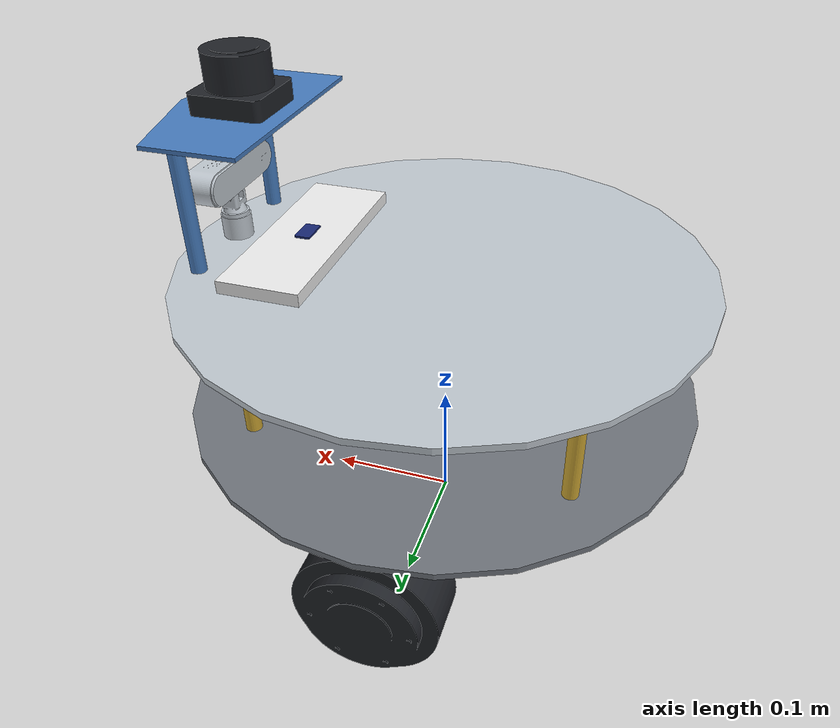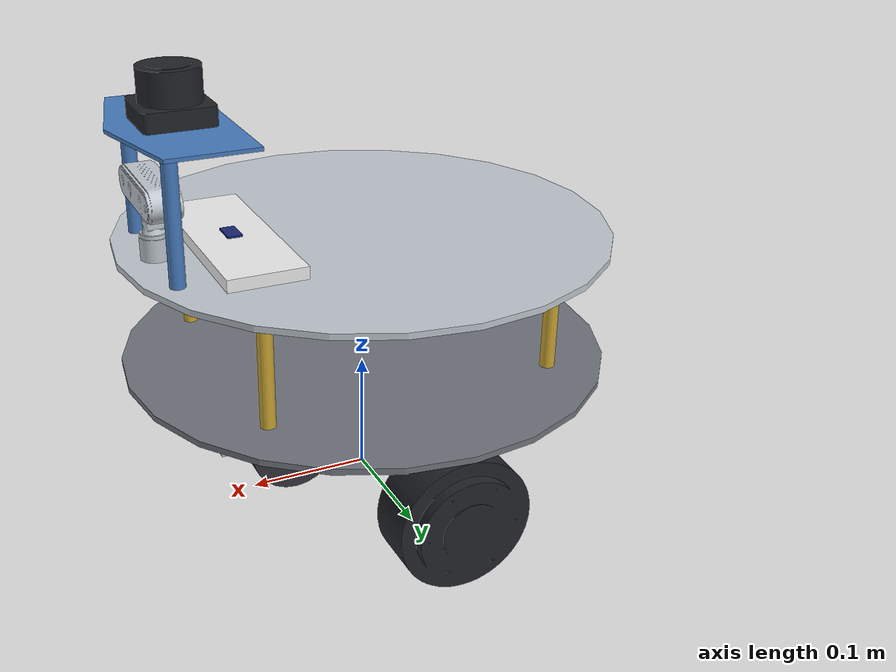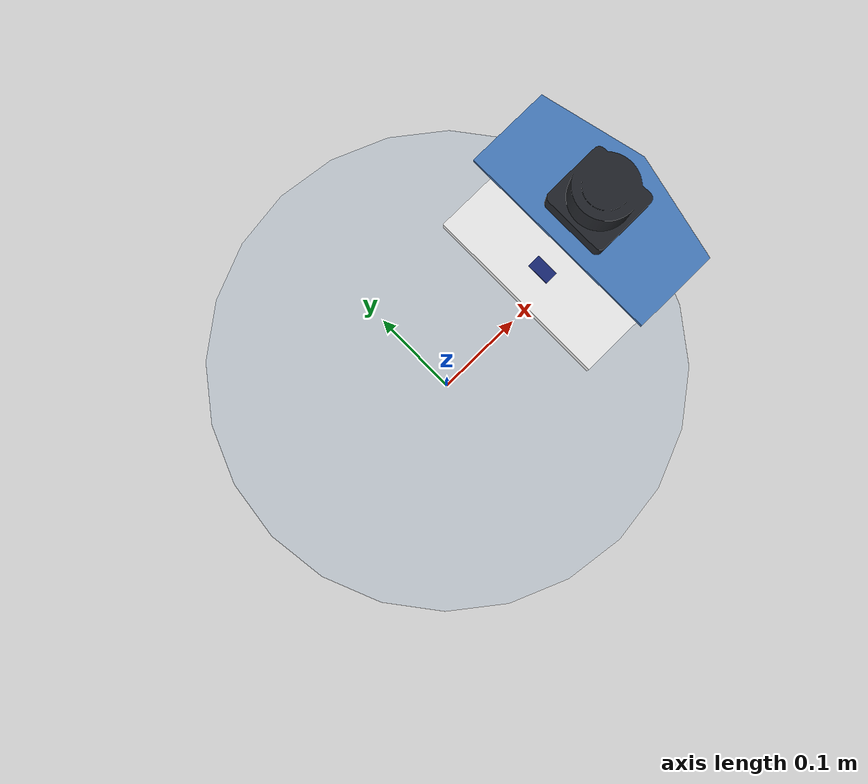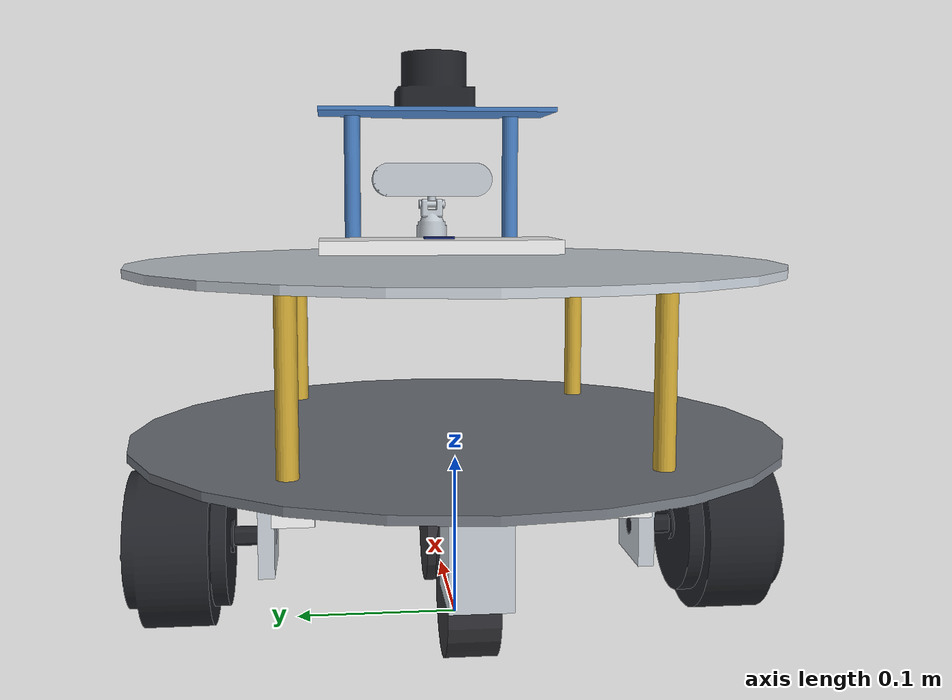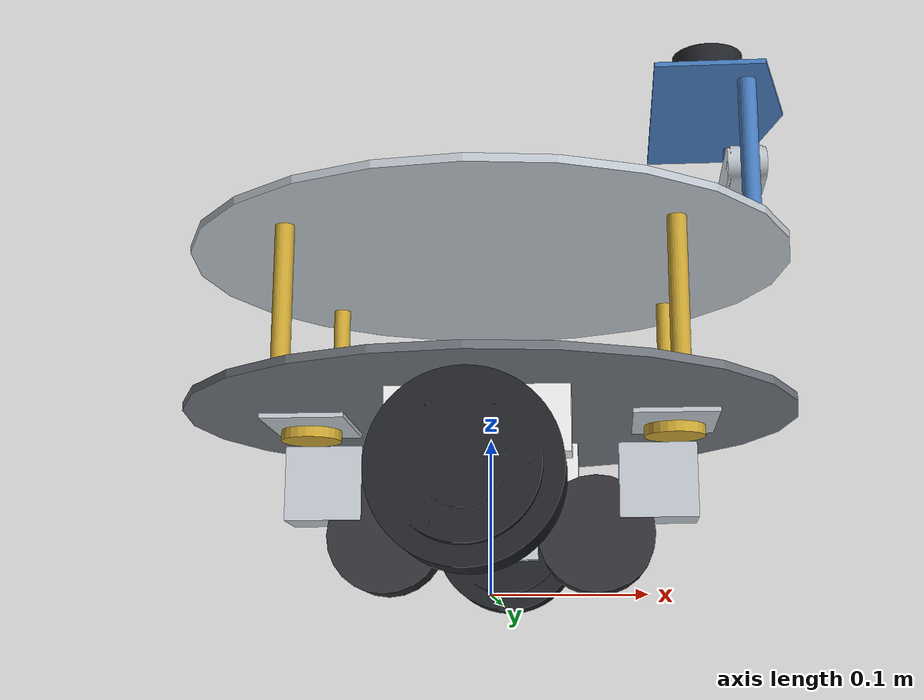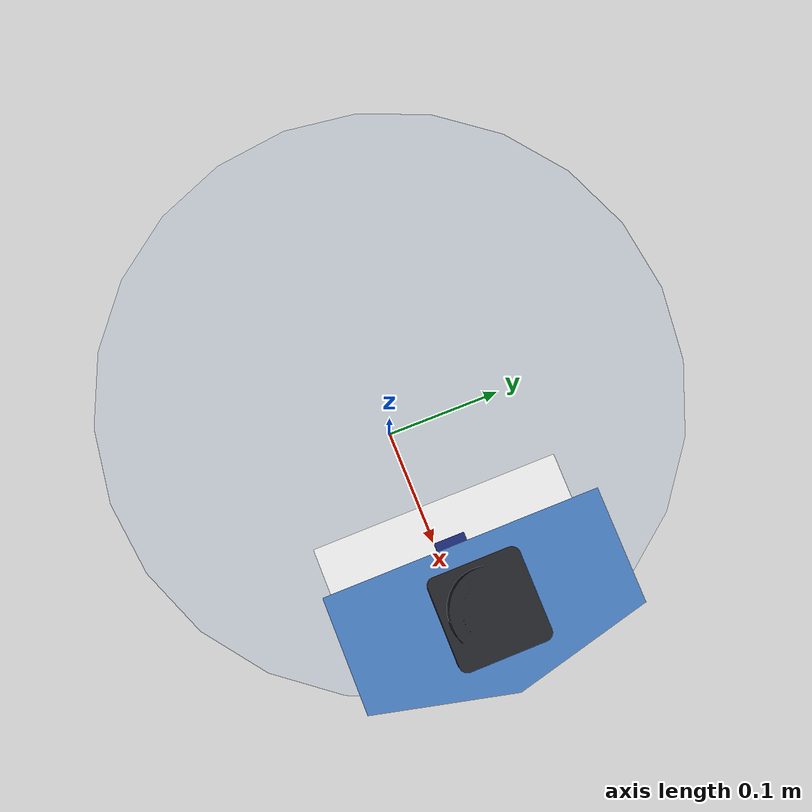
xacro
<?xml version="1.0"?>
<robot name="ace492" xmlns:xacro="http://www.ros.org/wiki/xacro">

  <!-- ===== Hình học (từ robot.urdf) ===== -->
  <xacro:property name="base_height" value="0.1135"/>    <!-- base_footprint -> base_link -->
  <xacro:property name="wheel_radius" value="0.0535"/>
  <xacro:property name="wheel_width" value="0.0415"/>
  <xacro:property name="wheel_y" value="0.17"/>           <!-- track 0.34 -->
  <xacro:property name="wheel_z" value="-0.06"/>
  <xacro:property name="caster_x" value="0.068"/>
  <xacro:property name="caster_z" value="-0.076"/>
  <xacro:property name="caster_radius" value="0.0375"/>
  <xacro:property name="mesh" value="package://robot_description/meshes"/>

  <!-- ===== Khối lượng: xe + laptop cân được 12 kg (người dùng, 2026-11-03) = thân 11 + 2 bánh × 0.5.
       Chia thân/bánh và trọng tâm vẫn là giả định. ===== -->
  <xacro:property name="base_mass" value="11.0"/>
  <xacro:property name="wheel_mass" value="0.5"/>
  <!-- Mô-men tối đa mỗi bánh (giới hạn lực của joint khi bám vận tốc). TBD theo datasheet motor -->
  <xacro:property name="wheel_effort" value="20.0"/>

  <xacro:property name="colors" value="${dict(
      chassis_gray='0.44 0.46 0.49 1', silver='0.76 0.79 0.82 1', gold='0.80 0.65 0.20 1',
      white='0.94 0.94 0.94 1', steel_blue='0.28 0.49 0.75 1', dark_black='0.13 0.14 0.16 1',
      rubber='0.20 0.20 0.22 1', imu_blue='0.10 0.16 0.46 1')}"/>
  <xacro:macro name="color" params="name">
    <material name="${name}"><color rgba="${colors[name]}"/></material>
  </xacro:macro>

  <!-- Trụ Ø12 (trụ nối 2 tầng, trụ đỡ tấm LiDAR) -->
  <xacro:macro name="standoff" params="x y z material">
    <visual>
      <origin xyz="${x} ${y} ${z}" rpy="0 0 0"/>
      <geometry><cylinder radius="0.006" length="0.1"/></geometry>
      <xacro:color name="${material}"/>
    </visual>
  </xacro:macro>

  <!-- Motor + tấm gá một bên (s = +1 trái, -1 phải) -->
  <xacro:macro name="motor_side" params="s">
    <visual>
      <origin xyz="0 ${s * 0.1} -0.02" rpy="0 0 0"/>
      <geometry><box size="0.11 0.025 0.04"/></geometry>
      <xacro:color name="white"/>
    </visual>
    <visual>
      <origin xyz="0 ${s * 0.1175} -0.04" rpy="0 0 0"/>
      <geometry><mesh filename="${mesh}/motor_plate.stl" scale="0.001 0.001 0.001"/></geometry>
      <xacro:color name="silver"/>
    </visual>
  </xacro:macro>

  <!-- Caster: tấm gá, khớp xoay, càng, bánh Ø75 (s = +1 trước, -1 sau). Collision là cầu (ma sát ~0). -->
  <xacro:macro name="caster" params="s">
    <visual>
      <origin xyz="${s * 0.12} 0 -0.0015" rpy="0 0 0"/>
      <geometry><box size="0.055 0.075 0.003"/></geometry>
      <xacro:color name="silver"/>
    </visual>
    <visual>
      <origin xyz="${s * 0.12} 0 -0.0085" rpy="0 0 0"/>
      <geometry><cylinder radius="0.02" length="0.007"/></geometry>
      <xacro:color name="gold"/>
    </visual>
    <visual>
      <origin xyz="${s * 0.108} 0 -0.0425" rpy="0 0 0"/>
      <geometry><box size="0.05 0.035 0.048"/></geometry>
      <xacro:color name="silver"/>
    </visual>
    <visual>
      <origin xyz="${s * caster_x} 0 ${caster_z}" rpy="${pi / 2} 0 0"/>
      <geometry><cylinder radius="${caster_radius}" length="0.03"/></geometry>
      <xacro:color name="rubber"/>
    </visual>
    <collision>
      <origin xyz="${s * caster_x} 0 ${caster_z}" rpy="0 0 0"/>
      <geometry><sphere radius="${caster_radius}"/></geometry>
    </collision>
  </xacro:macro>

  <!-- ===== base_footprint ===== -->
  <link name="base_footprint"/>

  <joint name="base_footprint_joint" type="fixed">
    <origin xyz="0 0 ${base_height}" rpy="0 0 0"/>
    <parent link="base_footprint"/>
    <child link="base_link"/>
  </joint>

  <!-- ===== base_link: thân + motor + caster (một link, không thêm frame so với robot.urdf) ===== -->
  <link name="base_link">
    <inertial>
      <!-- TBD: trọng tâm giả định ở tâm, cao 0.05 m trên base_link. Quán tính: trụ đặc r 0.2, cao ~0.245
           (cùng hình dạng như bản 8 kg cũ, nhân theo khối lượng). -->
      <origin xyz="0 0 0.05" rpy="0 0 0"/>
      <mass value="${base_mass}"/>
      <inertia ixx="${base_mass * (3 * 0.2**2 + 0.245**2) / 12}" ixy="0" ixz="0"
               iyy="${base_mass * (3 * 0.2**2 + 0.245**2) / 12}" iyz="0"
               izz="${base_mass * 0.2**2 / 2}"/>
    </inertial>

    <!-- [Tầng dưới] Đế tròn Ø400 dày 5 mm: z 0 → 0.005 -->
    <visual>
      <origin xyz="0 0 0.0025" rpy="0 0 0"/>
      <geometry><cylinder radius="0.2" length="0.005"/></geometry>
      <xacro:color name="chassis_gray"/>
    </visual>
    <collision>
      <origin xyz="0 0 0.0025" rpy="0 0 0"/>
      <geometry><cylinder radius="0.2" length="0.005"/></geometry>
    </collision>

    <!-- [Trụ nối 2 tầng] 4 trụ Ø12 cao 100 mm tại (±0.12, ±0.10) -->
    <xacro:standoff x="-0.12" y="-0.1" z="0.055" material="gold"/>
    <xacro:standoff x="-0.12" y="0.1" z="0.055" material="gold"/>
    <xacro:standoff x="0.12" y="-0.1" z="0.055" material="gold"/>
    <xacro:standoff x="0.12" y="0.1" z="0.055" material="gold"/>
    <!-- Va chạm khoang giữa 2 tầng: gộp thành trụ Ø400 (vật cản chạm mép đế trước) -->
    <collision>
      <origin xyz="0 0 0.055" rpy="0 0 0"/>
      <geometry><cylinder radius="0.2" length="0.1"/></geometry>
    </collision>

    <!-- [Tầng trên] Đế tròn Ø400 dày 5 mm: z 0.105 → 0.110 -->
    <visual>
      <origin xyz="0 0 0.1075" rpy="0 0 0"/>
      <geometry><cylinder radius="0.2" length="0.005"/></geometry>
      <xacro:color name="silver"/>
    </visual>
    <collision>
      <origin xyz="0 0 0.1075" rpy="0 0 0"/>
      <geometry><cylinder radius="0.2" length="0.005"/></geometry>
    </collision>

    <!-- [Breadboard] 170×63×10 mm, xoay 90°, tâm (0.11, 0, 0.115). IMU gắn trên mặt này -->
    <visual>
      <origin xyz="0.11 0 0.115" rpy="0 0 ${pi / 2}"/>
      <geometry><box size="0.17 0.063 0.01"/></geometry>
      <xacro:color name="white"/>
    </visual>

    <!-- [Giá camera] đáy tại mặt tầng trên (0.17, 0, 0.11), cao 40 mm -->
    <visual>
      <origin xyz="0.17 0 0.11" rpy="0 0 0"/>
      <geometry><mesh filename="${mesh}/camera_mount_photo.stl" scale="0.001 0.001 0.001"/></geometry>
      <xacro:color name="silver"/>
    </visual>

    <!-- [Tấm LiDAR] 90×170×3 mm, tâm dày z 0.2115 + 2 trụ đỡ tại (0.17, ±0.06) -->
    <visual>
      <origin xyz="0 0 0.2115" rpy="0 0 0"/>
      <geometry><mesh filename="${mesh}/lidar_plate.stl" scale="0.001 0.001 0.001"/></geometry>
      <xacro:color name="steel_blue"/>
    </visual>
    <xacro:standoff x="0.17" y="-0.06" z="0.16" material="steel_blue"/>
    <xacro:standoff x="0.17" y="0.06" z="0.16" material="steel_blue"/>

    <!-- Motor + tấm gá hai bên (bánh nằm ở link riêng) -->
    <xacro:motor_side s="1"/>
    <xacro:motor_side s="-1"/>

    <!-- Caster trước / sau -->
    <xacro:caster s="1"/>
    <xacro:caster s="-1"/>
  </link>

  <xacro:macro name="drive_wheel" params="side y axis_y mesh_yaw">
    <link name="${side}_wheel">
      <inertial>
        <origin xyz="0 0 0" rpy="0 0 0"/>
        <mass value="${wheel_mass}"/>
        <!-- trụ đặc: trục Y = m r^2 / 2, X/Z = m (3 r^2 + h^2) / 12 -->
        <inertia ixx="${wheel_mass * (3 * wheel_radius**2 + wheel_width**2) / 12}" ixy="0" ixz="0"
                 iyy="${wheel_mass * wheel_radius**2 / 2}" iyz="0"
                 izz="${wheel_mass * (3 * wheel_radius**2 + wheel_width**2) / 12}"/>
      </inertial>
      <visual>
        <origin xyz="0 0 0" rpy="0 0 ${mesh_yaw}"/>
        <geometry><mesh filename="${mesh}/drive_wheel.stl" scale="0.001 0.001 0.001"/></geometry>
        <xacro:color name="dark_black"/>
      </visual>
      <collision>
        <origin xyz="0 0 0" rpy="0 0 0"/>
        <geometry><sphere radius="${wheel_radius}"/></geometry>
      </collision>
    </link>

    <joint name="${side}_wheel_joint" type="continuous">
      <origin xyz="0 ${y} ${wheel_z}" rpy="0 0 0"/>
      <parent link="base_link"/>
      <child link="${side}_wheel"/>
      <axis xyz="0 ${axis_y} 0"/>
      <limit effort="${wheel_effort}" velocity="100.0"/>
    </joint>
  </xacro:macro>

  <xacro:drive_wheel side="left" y="${wheel_y}" axis_y="1" mesh_yaw="${pi}"/>
  <xacro:drive_wheel side="right" y="${-wheel_y}" axis_y="-1" mesh_yaw="0"/>

  <!-- ===== Frame cảm biến (y hệt robot.urdf; cảm biến Gazebo ở sim_sensors.xacro) ===== -->
  <link name="imu_link">
    <visual>
      <origin xyz="0 0 0" rpy="0 0 ${pi / 2}"/>
      <geometry><box size="0.021 0.012 0.0016"/></geometry>
      <xacro:color name="imu_blue"/>
    </visual>
  </link>
  <joint name="imu_joint" type="fixed">
    <origin xyz="0.11 0 0.1208" rpy="0 0 0"/>
    <parent link="base_link"/>
    <child link="imu_link"/>
  </joint>

  <link name="camera_link">
    <visual>
      <origin xyz="0 0 0" rpy="0 0 0"/>
      <geometry><mesh filename="${mesh}/camera_d435.stl" scale="0.001 0.001 0.001"/></geometry>
      <xacro:color name="silver"/>
    </visual>
    <collision>
      <origin xyz="0 0 0" rpy="0 0 0"/>
      <geometry><box size="0.025 0.09 0.025"/></geometry>
    </collision>
  </link>
  <joint name="camera_joint" type="fixed">
    <origin xyz="0.17 0 0.1625" rpy="0 0 0"/>
    <parent link="base_link"/>
    <child link="camera_link"/>
  </joint>

  <link name="camera_color_optical_frame"/>
  <joint name="camera_color_optical_frame_joint" type="fixed">
    <origin xyz="0 0 0" rpy="-1.5707963 0 -1.5707963"/>
    <parent link="camera_link"/>
    <child link="camera_color_optical_frame"/>
  </joint>

  <link name="camera_depth_optical_frame"/>
  <joint name="camera_depth_optical_frame_joint" type="fixed">
    <origin xyz="0 0 0" rpy="-1.5707963 0 -1.5707963"/>
    <parent link="camera_link"/>
    <child link="camera_depth_optical_frame"/>
  </joint>

  <link name="lidar_link">
    <visual>
      <origin xyz="0 0 0" rpy="0 0 0"/>
      <geometry><mesh filename="${mesh}/rplidar.stl" scale="0.001 0.001 0.001"/></geometry>
      <xacro:color name="dark_black"/>
    </visual>
    <collision>
      <origin xyz="0 0 0" rpy="0 0 0"/>
      <geometry><cylinder radius="0.0278" length="0.0418"/></geometry>
    </collision>
  </link>
  <joint name="lidar_joint" type="fixed">
    <origin xyz="0.15 0 0.23365" rpy="0 0 0"/>
    <parent link="base_link"/>
    <child link="lidar_link"/>
  </joint>

  <link name="laser_frame"/>
  <joint name="laser_joint" type="fixed">
    <origin xyz="0 0 0" rpy="0 0 0"/>
    <parent link="lidar_link"/>
    <child link="laser_frame"/>
  </joint>

  <xacro:include filename="$(find stage4_gazebo)/urdf/sim_gazebo.xacro"/>
  <xacro:include filename="$(find stage4_gazebo)/urdf/sim_sensors.xacro"/>

</robot>
